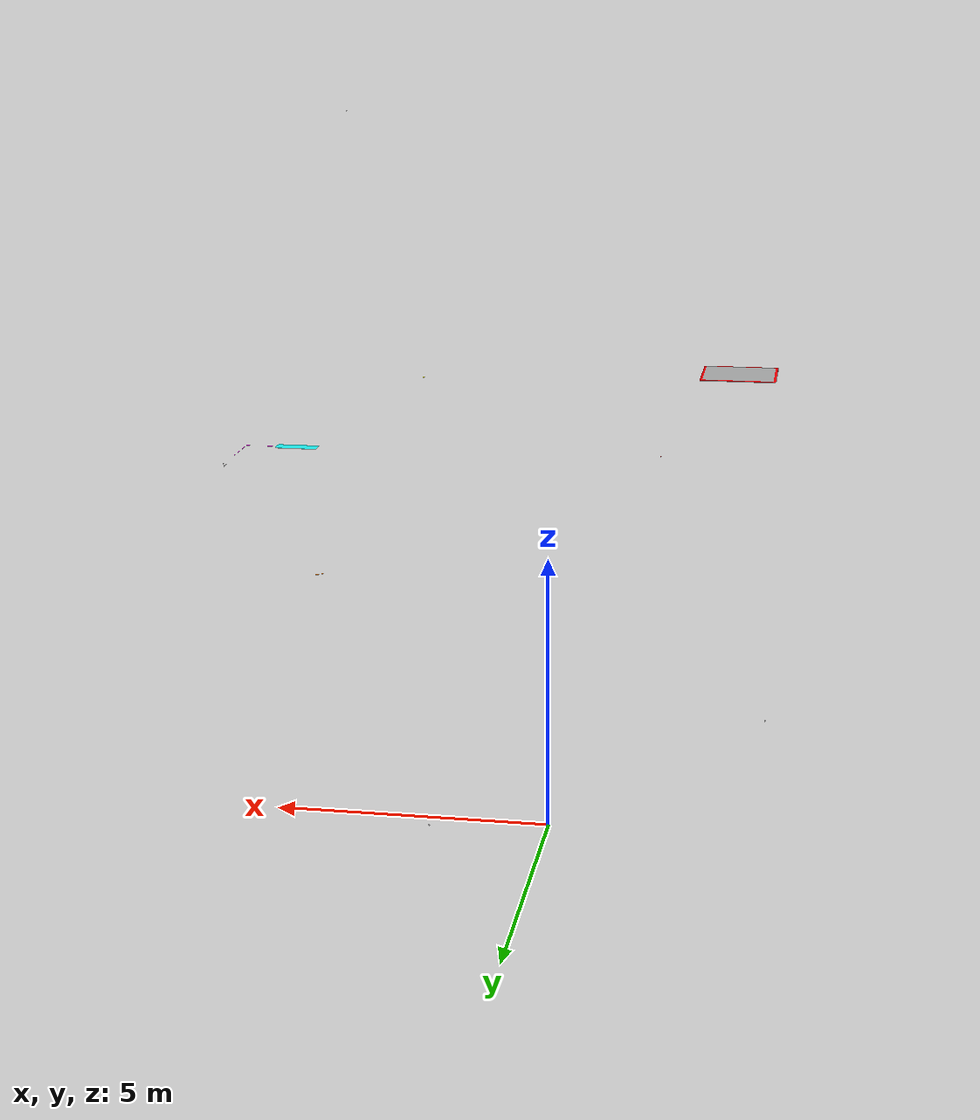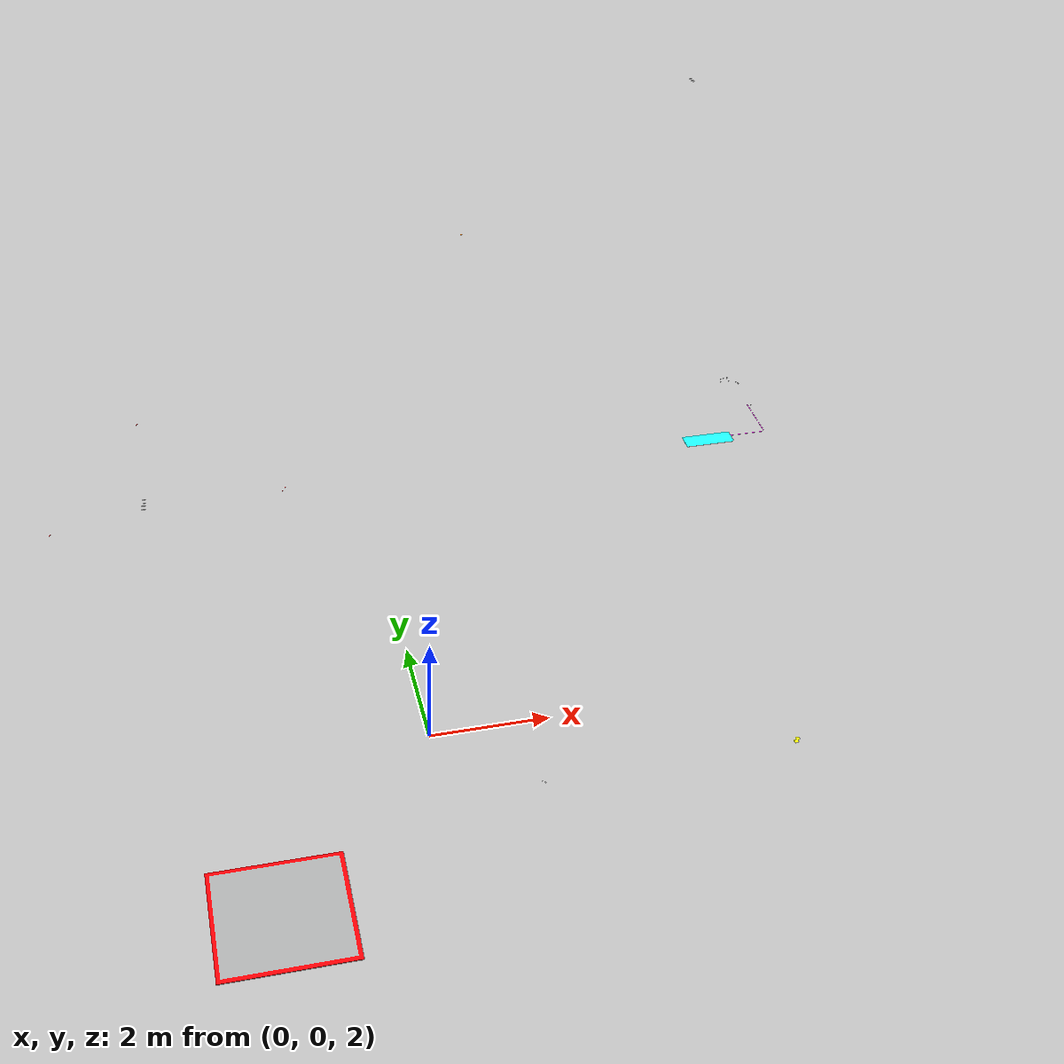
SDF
<?xml version="1.0"?>
<sdf version="1.9">
  <model name="robocup2026_world">
    <static>true</static>

    <pose>-3.674901 0.274759 6.961098 0 0 0</pose>
    <link name="arena_link">
      <visual name="arena_visual">
        <geometry>
          <mesh>
            <uri>model://robocup2026_world/meshes/robocup2026_world.dae</uri>
            <scale>0.001 0.001 0.001</scale>
          </mesh>
        </geometry>
      </visual>

    </link>
  </model>
</sdf>
